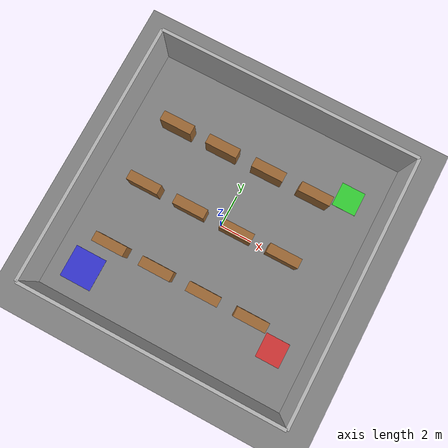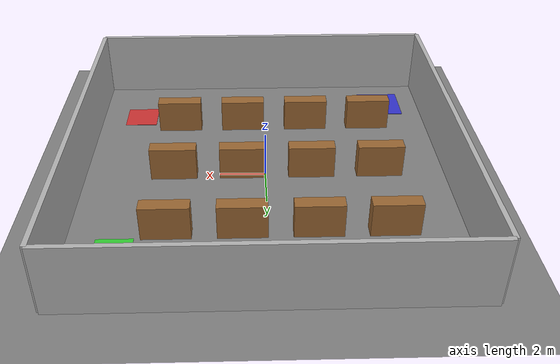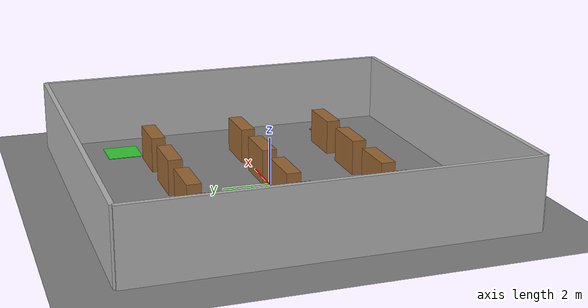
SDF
<?xml version="1.0" ?>
<sdf version="1.8">
  <world name="simple_warehouse">

    <!-- Physics -->
    <physics name="1ms" type="ignored">
      <max_step_size>0.001</max_step_size>
      <real_time_factor>1.0</real_time_factor>
    </physics>

    <!-- Plugins -->
    <plugin filename="gz-sim-physics-system" name="gz::sim::systems::Physics"/>
    <plugin filename="gz-sim-user-commands-system" name="gz::sim::systems::UserCommands"/>
    <plugin filename="gz-sim-scene-broadcaster-system" name="gz::sim::systems::SceneBroadcaster"/>
    <plugin filename="gz-sim-sensors-system" name="gz::sim::systems::Sensors">
      <render_engine>ogre2</render_engine>
    </plugin>
    <plugin filename="gz-sim-imu-system" name="gz::sim::systems::Imu"/>
    <plugin filename="gz-sim-contact-system" name="gz::sim::systems::Contact"/>

    <!-- Lighting -->
    <light type="directional" name="sun">
      <cast_shadows>true</cast_shadows>
      <pose>0 0 10 0 0 0</pose>
      <diffuse>0.8 0.8 0.8 1</diffuse>
      <specular>0.2 0.2 0.2 1</specular>
      <attenuation>
        <range>1000</range>
        <constant>0.9</constant>
        <linear>0.01</linear>
        <quadratic>0.001</quadratic>
      </attenuation>
      <direction>-0.5 0.1 -0.9</direction>
    </light>

    <!-- Ground Plane -->
    <model name="ground_plane">
      <static>true</static>
      <link name="link">
        <collision name="collision">
          <geometry>
            <plane>
              <normal>0 0 1</normal>
              <size>20 20</size>
            </plane>
          </geometry>
        </collision>
        <visual name="visual">
          <geometry>
            <plane>
              <normal>0 0 1</normal>
              <size>20 20</size>
            </plane>
          </geometry>
          <material>
            <ambient>0.3 0.3 0.3 1</ambient>
            <diffuse>0.5 0.5 0.5 1</diffuse>
          </material>
        </visual>
      </link>
    </model>

    <!-- Warehouse Walls -->
    <!-- North Wall -->
    <model name="wall_north">
      <static>true</static>
      <pose>0 8 1.5 0 0 0</pose>
      <link name="link">
        <collision name="collision">
          <geometry><box><size>16 0.2 3</size></box></geometry>
        </collision>
        <visual name="visual">
          <geometry><box><size>16 0.2 3</size></box></geometry>
          <material><ambient>0.6 0.6 0.6 1</ambient><diffuse>0.7 0.7 0.7 1</diffuse></material>
        </visual>
      </link>
    </model>

    <!-- South Wall -->
    <model name="wall_south">
      <static>true</static>
      <pose>0 -8 1.5 0 0 0</pose>
      <link name="link">
        <collision name="collision">
          <geometry><box><size>16 0.2 3</size></box></geometry>
        </collision>
        <visual name="visual">
          <geometry><box><size>16 0.2 3</size></box></geometry>
          <material><ambient>0.6 0.6 0.6 1</ambient><diffuse>0.7 0.7 0.7 1</diffuse></material>
        </visual>
      </link>
    </model>

    <!-- East Wall -->
    <model name="wall_east">
      <static>true</static>
      <pose>8 0 1.5 0 0 0</pose>
      <link name="link">
        <collision name="collision">
          <geometry><box><size>0.2 16 3</size></box></geometry>
        </collision>
        <visual name="visual">
          <geometry><box><size>0.2 16 3</size></box></geometry>
          <material><ambient>0.6 0.6 0.6 1</ambient><diffuse>0.7 0.7 0.7 1</diffuse></material>
        </visual>
      </link>
    </model>

    <!-- West Wall -->
    <model name="wall_west">
      <static>true</static>
      <pose>-8 0 1.5 0 0 0</pose>
      <link name="link">
        <collision name="collision">
          <geometry><box><size>0.2 16 3</size></box></geometry>
        </collision>
        <visual name="visual">
          <geometry><box><size>0.2 16 3</size></box></geometry>
          <material><ambient>0.6 0.6 0.6 1</ambient><diffuse>0.7 0.7 0.7 1</diffuse></material>
        </visual>
      </link>
    </model>

    <!-- Shelf Row 1 -->
    <model name="shelf_1a">
      <static>true</static>
      <pose>-5 4 0.75 0 0 0</pose>
      <link name="link">
        <collision name="collision">
          <geometry><box><size>2 0.6 1.5</size></box></geometry>
        </collision>
        <visual name="visual">
          <geometry><box><size>2 0.6 1.5</size></box></geometry>
          <material><ambient>0.4 0.3 0.2 1</ambient><diffuse>0.6 0.4 0.2 1</diffuse></material>
        </visual>
      </link>
    </model>

    <model name="shelf_1b">
      <static>true</static>
      <pose>-2 4 0.75 0 0 0</pose>
      <link name="link">
        <collision name="collision">
          <geometry><box><size>2 0.6 1.5</size></box></geometry>
        </collision>
        <visual name="visual">
          <geometry><box><size>2 0.6 1.5</size></box></geometry>
          <material><ambient>0.4 0.3 0.2 1</ambient><diffuse>0.6 0.4 0.2 1</diffuse></material>
        </visual>
      </link>
    </model>

    <model name="shelf_1c">
      <static>true</static>
      <pose>1 4 0.75 0 0 0</pose>
      <link name="link">
        <collision name="collision">
          <geometry><box><size>2 0.6 1.5</size></box></geometry>
        </collision>
        <visual name="visual">
          <geometry><box><size>2 0.6 1.5</size></box></geometry>
          <material><ambient>0.4 0.3 0.2 1</ambient><diffuse>0.6 0.4 0.2 1</diffuse></material>
        </visual>
      </link>
    </model>

    <model name="shelf_1d">
      <static>true</static>
      <pose>4 4 0.75 0 0 0</pose>
      <link name="link">
        <collision name="collision">
          <geometry><box><size>2 0.6 1.5</size></box></geometry>
        </collision>
        <visual name="visual">
          <geometry><box><size>2 0.6 1.5</size></box></geometry>
          <material><ambient>0.4 0.3 0.2 1</ambient><diffuse>0.6 0.4 0.2 1</diffuse></material>
        </visual>
      </link>
    </model>

    <!-- Shelf Row 2 -->
    <model name="shelf_2a">
      <static>true</static>
      <pose>-5 0 0.75 0 0 0</pose>
      <link name="link">
        <collision name="collision">
          <geometry><box><size>2 0.6 1.5</size></box></geometry>
        </collision>
        <visual name="visual">
          <geometry><box><size>2 0.6 1.5</size></box></geometry>
          <material><ambient>0.4 0.3 0.2 1</ambient><diffuse>0.6 0.4 0.2 1</diffuse></material>
        </visual>
      </link>
    </model>

    <model name="shelf_2b">
      <static>true</static>
      <pose>-2 0 0.75 0 0 0</pose>
      <link name="link">
        <collision name="collision">
          <geometry><box><size>2 0.6 1.5</size></box></geometry>
        </collision>
        <visual name="visual">
          <geometry><box><size>2 0.6 1.5</size></box></geometry>
          <material><ambient>0.4 0.3 0.2 1</ambient><diffuse>0.6 0.4 0.2 1</diffuse></material>
        </visual>
      </link>
    </model>

    <model name="shelf_2c">
      <static>true</static>
      <pose>1 0 0.75 0 0 0</pose>
      <link name="link">
        <collision name="collision">
          <geometry><box><size>2 0.6 1.5</size></box></geometry>
        </collision>
        <visual name="visual">
          <geometry><box><size>2 0.6 1.5</size></box></geometry>
          <material><ambient>0.4 0.3 0.2 1</ambient><diffuse>0.6 0.4 0.2 1</diffuse></material>
        </visual>
      </link>
    </model>

    <model name="shelf_2d">
      <static>true</static>
      <pose>4 0 0.75 0 0 0</pose>
      <link name="link">
        <collision name="collision">
          <geometry><box><size>2 0.6 1.5</size></box></geometry>
        </collision>
        <visual name="visual">
          <geometry><box><size>2 0.6 1.5</size></box></geometry>
          <material><ambient>0.4 0.3 0.2 1</ambient><diffuse>0.6 0.4 0.2 1</diffuse></material>
        </visual>
      </link>
    </model>

    <!-- Shelf Row 3 -->
    <model name="shelf_3a">
      <static>true</static>
      <pose>-5 -4 0.75 0 0 0</pose>
      <link name="link">
        <collision name="collision">
          <geometry><box><size>2 0.6 1.5</size></box></geometry>
        </collision>
        <visual name="visual">
          <geometry><box><size>2 0.6 1.5</size></box></geometry>
          <material><ambient>0.4 0.3 0.2 1</ambient><diffuse>0.6 0.4 0.2 1</diffuse></material>
        </visual>
      </link>
    </model>

    <model name="shelf_3b">
      <static>true</static>
      <pose>-2 -4 0.75 0 0 0</pose>
      <link name="link">
        <collision name="collision">
          <geometry><box><size>2 0.6 1.5</size></box></geometry>
        </collision>
        <visual name="visual">
          <geometry><box><size>2 0.6 1.5</size></box></geometry>
          <material><ambient>0.4 0.3 0.2 1</ambient><diffuse>0.6 0.4 0.2 1</diffuse></material>
        </visual>
      </link>
    </model>

    <model name="shelf_3c">
      <static>true</static>
      <pose>1 -4 0.75 0 0 0</pose>
      <link name="link">
        <collision name="collision">
          <geometry><box><size>2 0.6 1.5</size></box></geometry>
        </collision>
        <visual name="visual">
          <geometry><box><size>2 0.6 1.5</size></box></geometry>
          <material><ambient>0.4 0.3 0.2 1</ambient><diffuse>0.6 0.4 0.2 1</diffuse></material>
        </visual>
      </link>
    </model>

    <model name="shelf_3d">
      <static>true</static>
      <pose>4 -4 0.75 0 0 0</pose>
      <link name="link">
        <collision name="collision">
          <geometry><box><size>2 0.6 1.5</size></box></geometry>
        </collision>
        <visual name="visual">
          <geometry><box><size>2 0.6 1.5</size></box></geometry>
          <material><ambient>0.4 0.3 0.2 1</ambient><diffuse>0.6 0.4 0.2 1</diffuse></material>
        </visual>
      </link>
    </model>

    <!-- Pallet/Pickup Zone markers -->
    <model name="pickup_zone_a">
      <static>true</static>
      <pose>6 5 0.01 0 0 0</pose>
      <link name="link">
        <visual name="visual">
          <geometry><box><size>1.5 1.5 0.02</size></box></geometry>
          <material><ambient>0.1 0.5 0.1 1</ambient><diffuse>0.2 0.8 0.2 1</diffuse></material>
        </visual>
      </link>
    </model>

    <model name="pickup_zone_b">
      <static>true</static>
      <pose>6 -5 0.01 0 0 0</pose>
      <link name="link">
        <visual name="visual">
          <geometry><box><size>1.5 1.5 0.02</size></box></geometry>
          <material><ambient>0.5 0.1 0.1 1</ambient><diffuse>0.8 0.2 0.2 1</diffuse></material>
        </visual>
      </link>
    </model>

    <model name="dock_zone">
      <static>true</static>
      <pose>-6 -6 0.01 0 0 0</pose>
      <link name="link">
        <visual name="visual">
          <geometry><box><size>2 2 0.02</size></box></geometry>
          <material><ambient>0.1 0.1 0.5 1</ambient><diffuse>0.2 0.2 0.8 1</diffuse></material>
        </visual>
      </link>
    </model>

  </world>
</sdf>
